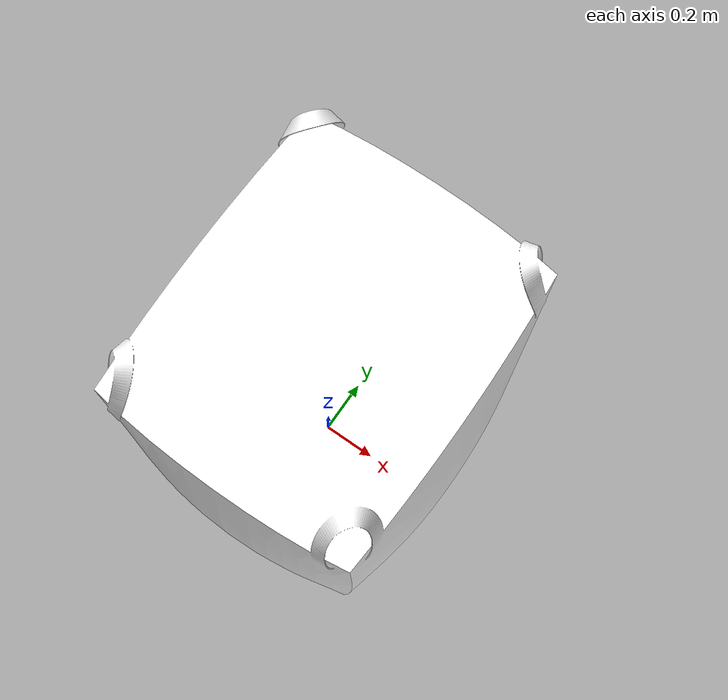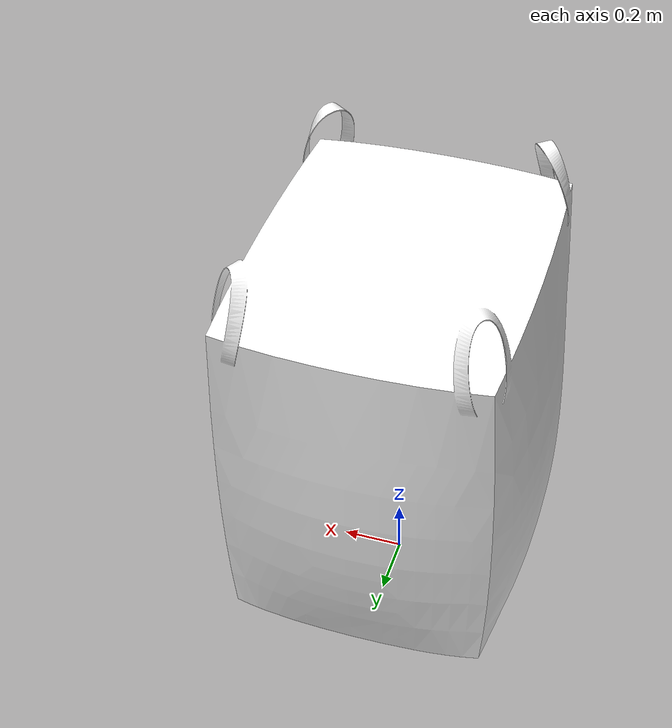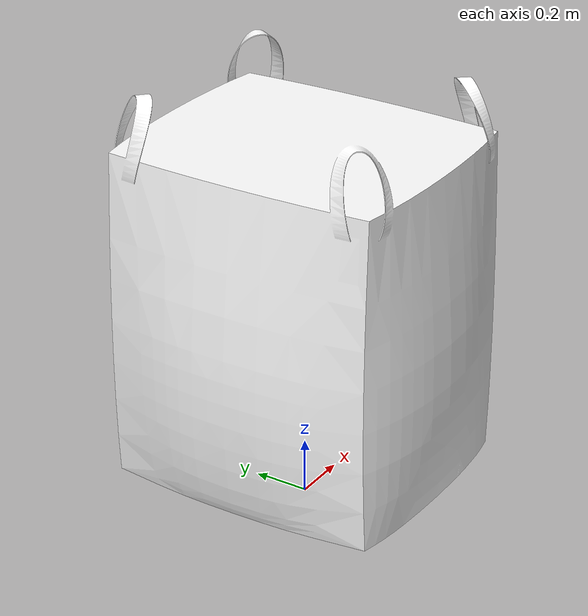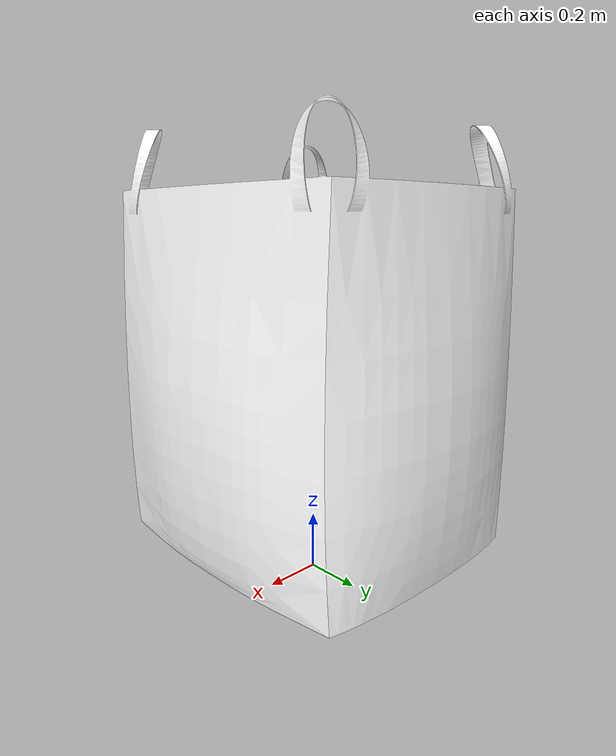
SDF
<?xml version='1.0'?>
<sdf version='1.7'>
  <model name='bag'>
    <link name='bag_one'>
      <inertial>
        <mass>1</mass>
        <inertia>
          <ixx>0.207</ixx>
          <ixy>0</ixy>
          <ixz>0</ixz>
          <iyy>0.149</iyy>
          <iyz>0</iyz>
          <izz>0.190</izz>
        </inertia>
        <pose>0 0 0.5 0 -0 0</pose>
      </inertial>
      <self_collide>0</self_collide>
      <enable_wind>0</enable_wind>
      <kinematic>0</kinematic>
      <pose>-0 0 0.144 0 -0 0</pose>
      <gravity>1</gravity>
      <visual name='bag_visual_one'>
        <geometry>
          <mesh>
            <uri>model://bag/bag_1000kg.stl</uri>
            <scale>0.00074 0.0008 0.0009</scale>
          </mesh>
        </geometry>
        <material>
          <ambient>1 1 1 1</ambient>
          <diffuse>1 1 1 1</diffuse>
          <specular>0 0 0 1</specular>
          <emissive>0 0 0 1</emissive>
        </material>
        <pose>0 0 0 1.5708 -0 0</pose>
        <transparency>0</transparency>
        <cast_shadows>1</cast_shadows>
      </visual>

      <collision name='bag_collision_one'>
        <laser_retro>0</laser_retro>
        <max_contacts>10</max_contacts>
        <pose>0 0 0.58 1.5708 -0 0</pose>
        <geometry>
          <box>
            <size>0.89 1.22 1</size>
          </box>
        </geometry>
        <surface>
          <friction>
            <ode>
              <mu>20</mu>
              <mu2>20</mu2>
              <fdir1>0 0 0</fdir1>
              <slip1>0</slip1>
              <slip2>0</slip2>
            </ode>
            <torsional>
              <coefficient>1</coefficient>
              <patch_radius>0</patch_radius>
              <surface_radius>0</surface_radius>
              <use_patch_radius>1</use_patch_radius>
              <ode>
                <slip>0</slip>
              </ode>
            </torsional>
          </friction>
          <bounce>
            <restitution_coefficient>0</restitution_coefficient>
            <threshold>1e+06</threshold>
          </bounce>
          <contact>
            <collide_without_contact>0</collide_without_contact>
            <collide_without_contact_bitmask>1</collide_without_contact_bitmask>
            <collide_bitmask>1</collide_bitmask>
            <ode>
              <soft_cfm>0</soft_cfm>
              <soft_erp>0.2</soft_erp>
              <kp>1e+13</kp>
              <kd>1</kd>
              <max_vel>0.01</max_vel>
              <min_depth>0</min_depth>
            </ode>
            <bullet>
              <split_impulse>1</split_impulse>
              <split_impulse_penetration_threshold>-0.01</split_impulse_penetration_threshold>
              <soft_cfm>0</soft_cfm>
              <soft_erp>0.2</soft_erp>
              <kp>1e+13</kp>
              <kd>1</kd>
            </bullet>
          </contact>
        </surface>
      </collision>
    </link>
    <static>1</static>
  </model>
</sdf>
